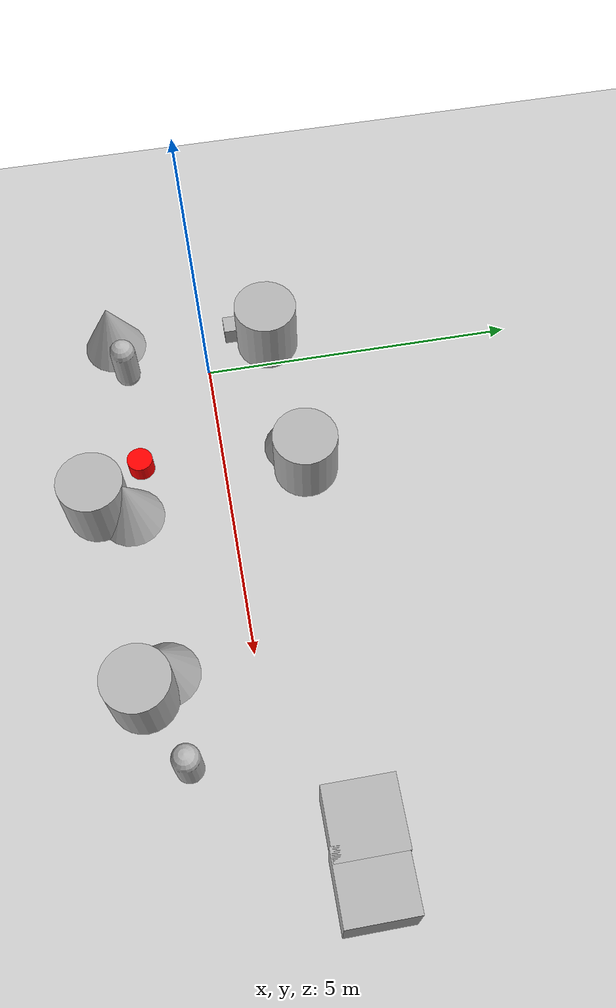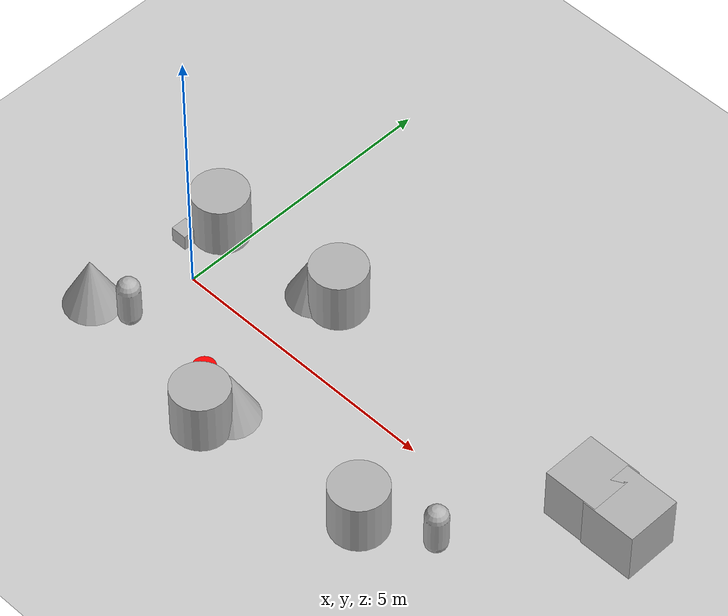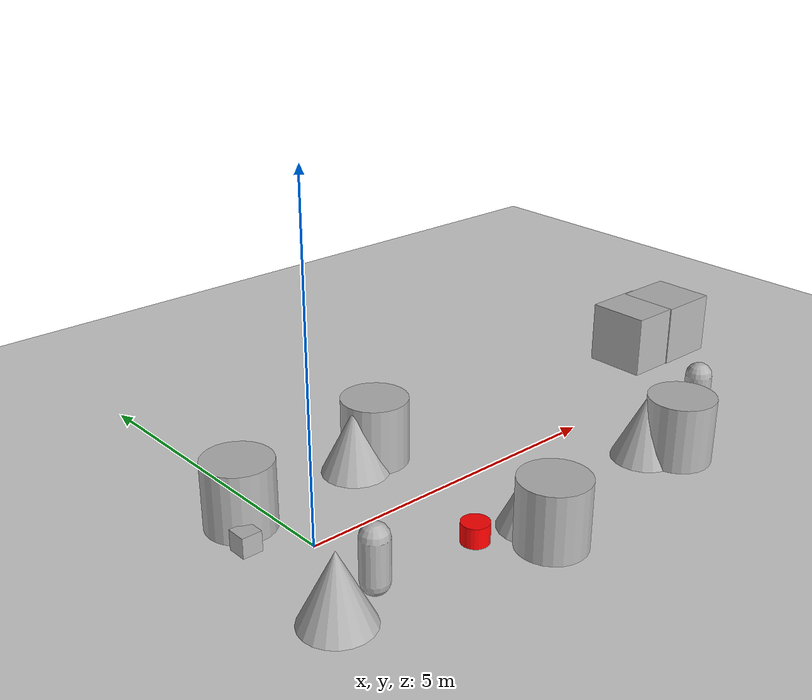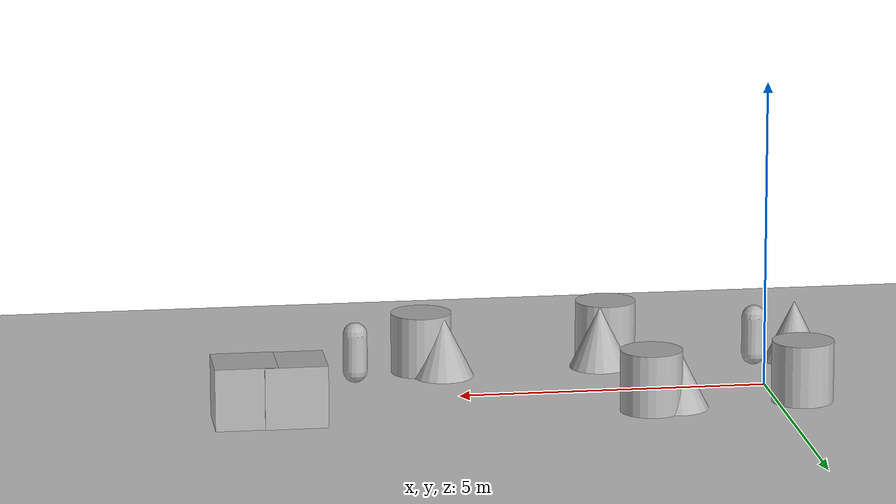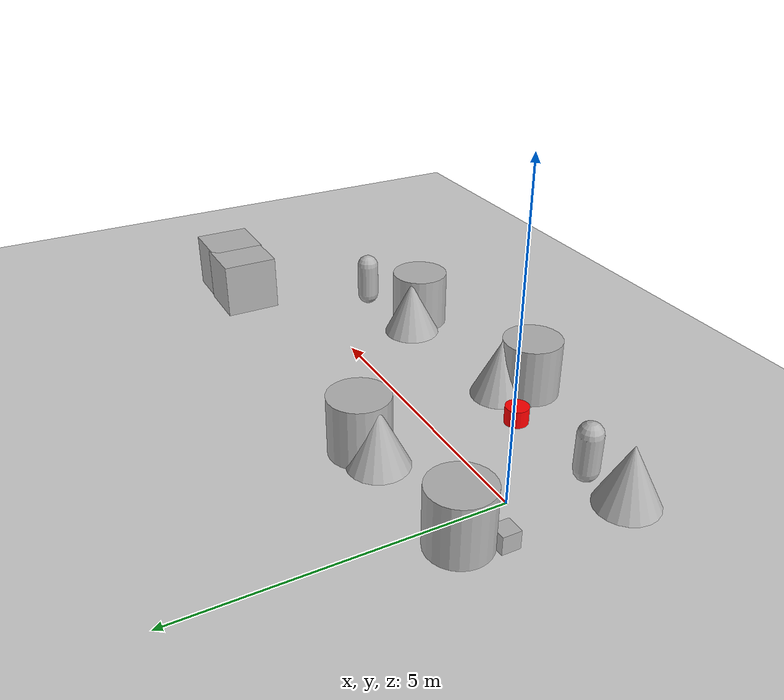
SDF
<sdf version='1.10'>
  <world name='empty'>
    <physics name='1ms' type='ignored'>
      <max_step_size>0.001</max_step_size>
      <real_time_factor>1</real_time_factor>
      <real_time_update_rate>1000</real_time_update_rate>
    </physics>
    <plugin name='gz::sim::systems::Physics' filename='gz-sim-physics-system'/>
    <plugin name='gz::sim::systems::UserCommands' filename='gz-sim-user-commands-system'/>
    <plugin name='gz::sim::systems::SceneBroadcaster' filename='gz-sim-scene-broadcaster-system'/>
    <plugin name='gz::sim::systems::Contact' filename='gz-sim-contact-system'/>
    <gravity>0 0 -9.8000000000000007</gravity>
    <magnetic_field>5.5644999999999998e-06 2.2875799999999999e-05 -4.2388400000000002e-05</magnetic_field>
    <atmosphere type='adiabatic'/>
    <scene>
      <ambient>0.400000006 0.400000006 0.400000006 1</ambient>
      <background>0.699999988 0.699999988 0.699999988 1</background>
      <shadows>true</shadows>
    </scene>
    <model name='ground_plane'>
      <static>true</static>
      <link name='link'>
        <collision name='collision'>
          <geometry>
            <plane>
              <normal>0 0 1</normal>
              <size>100 100</size>
            </plane>
          </geometry>
          <surface>
            <friction>
              <ode/>
            </friction>
            <bounce/>
            <contact/>
          </surface>
        </collision>
        <visual name='visual'>
          <geometry>
            <plane>
              <normal>0 0 1</normal>
              <size>100 100</size>
            </plane>
          </geometry>
          <material>
            <ambient>0.800000012 0.800000012 0.800000012 1</ambient>
            <diffuse>0.800000012 0.800000012 0.800000012 1</diffuse>
            <specular>0.800000012 0.800000012 0.800000012 1</specular>
          </material>
        </visual>
        <pose>0 0 0 0 0 0</pose>
        <inertial>
          <pose>0 0 0 0 0 0</pose>
          <mass>1</mass>
          <inertia>
            <ixx>1</ixx>
            <ixy>0</ixy>
            <ixz>0</ixz>
            <iyy>1</iyy>
            <iyz>0</iyz>
            <izz>1</izz>
          </inertia>
        </inertial>
        <enable_wind>false</enable_wind>
      </link>
      <pose>0 0 0 0 0 0</pose>
      <self_collide>false</self_collide>
    </model>
    <model name='cylinder'>
      <pose>1.6301748752593994 -1.2849099636077881 0.15000000596046448 0 0 0</pose>
      <link name='cylinder_link'>
        <inertial>
          <inertia>
            <ixx>0.14499999999999999</ixx>
            <ixy>0</ixy>
            <ixz>0</ixz>
            <iyy>0.14499999999999999</iyy>
            <iyz>0</iyz>
            <izz>0.125</izz>
          </inertia>
          <mass>1</mass>
          <pose>0 0 0 0 0 0</pose>
        </inertial>
        <collision name='cylinder_collision'>
          <geometry>
            <cylinder>
              <radius>0.20000000000000001</radius>
              <length>0.29999999999999999</length>
            </cylinder>
          </geometry>
          <surface>
            <friction>
              <ode/>
            </friction>
            <bounce/>
            <contact/>
          </surface>
        </collision>
        <visual name='cylinder_visual'>
          <geometry>
            <cylinder>
              <radius>0.20000000000000001</radius>
              <length>0.29999999999999999</length>
            </cylinder>
          </geometry>
          <material>
            <ambient>0.300000012 0.300000012 0.300000012 1</ambient>
            <diffuse>1 0 0 1</diffuse>
            <specular>0.5 0.5 0.5 1</specular>
            <emissive>0 0 0 1</emissive>
          </material>
        </visual>
        <pose>0 0 0 0 0 0</pose>
        <enable_wind>false</enable_wind>
      </link>
      <static>false</static>
      <self_collide>false</self_collide>
    </model>
    <model name='box'>
      <pose>-0.69999999999999996 0.5 0.14999999999999999 0 0 0</pose>
      <link name='box_link'>
        <inertial>
          <inertia>
            <ixx>0.16666</ixx>
            <ixy>0</ixy>
            <ixz>0</ixz>
            <iyy>0.16666</iyy>
            <iyz>0</iyz>
            <izz>0.16666</izz>
          </inertia>
          <mass>1</mass>
          <pose>0 0 0 0 0 0</pose>
        </inertial>
        <collision name='box_collision'>
          <geometry>
            <box>
              <size>0.29999999999999999 0.29999999999999999 0.29999999999999999</size>
            </box>
          </geometry>
          <surface>
            <friction>
              <ode/>
            </friction>
            <bounce/>
            <contact/>
          </surface>
        </collision>
        <visual name='box_visual'>
          <geometry>
            <box>
              <size>0.29999999999999999 0.29999999999999999 0.29999999999999999</size>
            </box>
          </geometry>
          <material>
            <ambient>0.300000012 0.300000012 0.300000012 1</ambient>
            <diffuse>0.699999988 0.699999988 0.699999988 1</diffuse>
            <specular>1 1 1 1</specular>

          </material>
        </visual>
        <pose>0 0 0 0 0 0</pose>
        <enable_wind>false</enable_wind>
      </link>
      <static>false</static>
      <self_collide>false</self_collide>
    </model>
    <model name='cone'>
      <pose>2.4663753639181971 -1.5219601252713684 0.5 0 0 0</pose>
      <link name='cone_link'>
        <inertial>
          <inertia>
            <ixx>0.074999999999999997</ixx>
            <ixy>0</ixy>
            <ixz>0</ixz>
            <iyy>0.074999999999999997</iyy>
            <iyz>0</iyz>
            <izz>0.074999999999999997</izz>
          </inertia>
          <mass>1</mass>
          <pose>0 0 0 0 0 0</pose>
        </inertial>
        <collision name='cone_collision'>
          <geometry>
            <cone>
              <radius>0.5</radius>
              <length>1</length>
            </cone>
          </geometry>
          <surface>
            <friction>
              <ode/>
            </friction>
            <bounce/>
            <contact/>
          </surface>
        </collision>
        <visual name='cone_visual'>
          <geometry>
            <cone>
              <radius>0.5</radius>
              <length>1</length>
            </cone>
          </geometry>
          <material>
            <ambient>0.300000012 0.300000012 0.300000012 1</ambient>
            <diffuse>0.699999988 0.699999988 0.699999988 1</diffuse>
            <specular>1 1 1 1</specular>
          </material>
        </visual>
        <pose>0 0 0 0 0 0</pose>
        <enable_wind>false</enable_wind>
      </link>
      <static>false</static>
      <self_collide>false</self_collide>
    </model>
    <model name='capsule'>
      <pose>-0.072748899945221712 -1.3118623397277054 0.5 0 0 0</pose>
      <link name='capsule_link'>
        <inertial>
          <inertia>
            <ixx>0.074153999999999998</ixx>
            <ixy>0</ixy>
            <ixz>0</ixz>
            <iyy>0.074153999999999998</iyy>
            <iyz>0</iyz>
            <izz>0.018769000000000001</izz>
          </inertia>
          <mass>1</mass>
          <pose>0 0 0 0 0 0</pose>
        </inertial>
        <collision name='capsule_collision'>
          <geometry>
            <capsule>
              <radius>0.20000000000000001</radius>
              <length>0.59999999999999998</length>
            </capsule>
          </geometry>
          <surface>
            <friction>
              <ode/>
            </friction>
            <bounce/>
            <contact/>
          </surface>
        </collision>
        <visual name='capsule_visual'>
          <geometry>
            <capsule>
              <radius>0.20000000000000001</radius>
              <length>0.59999999999999998</length>
            </capsule>
          </geometry>
          <material>
            <ambient>0.300000012 0.300000012 0.300000012 1</ambient>
            <diffuse>0.699999988 0.699999988 0.699999988 1</diffuse>
            <specular>1 1 1 1</specular>
          </material>
        </visual>
        <pose>0 0 0 0 0 0</pose>
        <enable_wind>false</enable_wind>
      </link>
      <static>false</static>
      <self_collide>false</self_collide>
    </model>
    <model name='cylinder_1'>
      <pose>-0.41330298781394958 1.0378412008285522 0.5 0 0 0</pose>
      <link name='cylinder_link'>
        <inertial>
          <inertia>
            <ixx>0.14580000000000001</ixx>
            <ixy>0</ixy>
            <ixz>0</ixz>
            <iyy>0.14580000000000001</iyy>
            <iyz>0</iyz>
            <izz>0.125</izz>
          </inertia>
          <mass>1</mass>
          <pose>0 0 0 0 0 0</pose>
        </inertial>
        <collision name='cylinder_collision'>
          <geometry>
            <cylinder>
              <radius>0.5</radius>
              <length>1</length>
            </cylinder>
          </geometry>
          <surface>
            <friction>
              <ode/>
            </friction>
            <bounce/>
            <contact/>
          </surface>
        </collision>
        <visual name='cylinder_visual'>
          <geometry>
            <cylinder>
              <radius>0.5</radius>
              <length>1</length>
            </cylinder>
          </geometry>
          <material>
            <ambient>0.300000012 0.300000012 0.300000012 1</ambient>
            <diffuse>0.699999988 0.699999988 0.699999988 1</diffuse>
            <specular>1 1 1 1</specular>
          </material>
        </visual>
        <pose>0 0 0 0 0 0</pose>
        <enable_wind>false</enable_wind>
      </link>
      <static>false</static>
      <self_collide>false</self_collide>
    </model>
    <model name='cylinder_2'>
      <pose>5.4198716437239751 -1.6309203208839749 0.5 0 0 0</pose>
      <link name='cylinder_link'>
        <inertial>
          <inertia>
            <ixx>0.14580000000000001</ixx>
            <ixy>0</ixy>
            <ixz>0</ixz>
            <iyy>0.14580000000000001</iyy>
            <iyz>0</iyz>
            <izz>0.125</izz>
          </inertia>
          <mass>1</mass>
          <pose>0 0 0 0 0 0</pose>
        </inertial>
        <collision name='cylinder_collision'>
          <geometry>
            <cylinder>
              <radius>0.5</radius>
              <length>1</length>
            </cylinder>
          </geometry>
          <surface>
            <friction>
              <ode/>
            </friction>
            <bounce/>
            <contact/>
          </surface>
        </collision>
        <visual name='cylinder_visual'>
          <geometry>
            <cylinder>
              <radius>0.5</radius>
              <length>1</length>
            </cylinder>
          </geometry>
          <material>
            <ambient>0.300000012 0.300000012 0.300000012 1</ambient>
            <diffuse>0.699999988 0.699999988 0.699999988 1</diffuse>
            <specular>1 1 1 1</specular>
          </material>
        </visual>
        <pose>0 0 0 0 0 0</pose>
        <enable_wind>false</enable_wind>
      </link>
      <static>false</static>
      <self_collide>false</self_collide>
    </model>
    <model name='cone_2'>
      <pose>-0.78715801239013672 -1.4781883955001831 0.5 0 0 0</pose>
      <link name='cone_link'>
        <inertial>
          <inertia>
            <ixx>0.074999999999999997</ixx>
            <ixy>0</ixy>
            <ixz>0</ixz>
            <iyy>0.074999999999999997</iyy>
            <iyz>0</iyz>
            <izz>0.074999999999999997</izz>
          </inertia>
          <mass>1</mass>
          <pose>0 0 0 0 0 0</pose>
        </inertial>
        <collision name='cone_collision'>
          <geometry>
            <cone>
              <radius>0.5</radius>
              <length>1</length>
            </cone>
          </geometry>
          <surface>
            <friction>
              <ode/>
            </friction>
            <bounce/>
            <contact/>
          </surface>
        </collision>
        <visual name='cone_visual'>
          <geometry>
            <cone>
              <radius>0.5</radius>
              <length>1</length>
            </cone>
          </geometry>
          <material>
            <ambient>0.300000012 0.300000012 0.300000012 1</ambient>
            <diffuse>0.699999988 0.699999988 0.699999988 1</diffuse>
            <specular>1 1 1 1</specular>
          </material>
        </visual>
        <pose>0 0 0 0 0 0</pose>
        <enable_wind>false</enable_wind>
      </link>
      <static>false</static>
      <self_collide>false</self_collide>
    </model>
    <model name='cylinder_3'>
      <pose>2.3009109497070312 -1.9980499744415283 0.5 0 0 0</pose>
      <link name='cylinder_link'>
        <inertial>
          <inertia>
            <ixx>0.14580000000000001</ixx>
            <ixy>0</ixy>
            <ixz>0</ixz>
            <iyy>0.14580000000000001</iyy>
            <iyz>0</iyz>
            <izz>0.125</izz>
          </inertia>
          <mass>1</mass>
          <pose>0 0 0 0 0 0</pose>
        </inertial>
        <collision name='cylinder_collision'>
          <geometry>
            <cylinder>
              <radius>0.5</radius>
              <length>1</length>
            </cylinder>
          </geometry>
          <surface>
            <friction>
              <ode/>
            </friction>
            <bounce/>
            <contact/>
          </surface>
        </collision>
        <visual name='cylinder_visual'>
          <geometry>
            <cylinder>
              <radius>0.5</radius>
              <length>1</length>
            </cylinder>
          </geometry>
          <material>
            <ambient>0.300000012 0.300000012 0.300000012 1</ambient>
            <diffuse>0.699999988 0.699999988 0.699999988 1</diffuse>
            <specular>1 1 1 1</specular>
          </material>
        </visual>
        <pose>0 0 0 0 0 0</pose>
        <enable_wind>false</enable_wind>
      </link>
      <static>false</static>
      <self_collide>false</self_collide>
    </model>
    <model name='cone_3'>
      <pose>1.644070029258728 1.1721001863479614 0.5 0 0 0</pose>
      <link name='cone_link'>
        <inertial>
          <inertia>
            <ixx>0.074999999999999997</ixx>
            <ixy>0</ixy>
            <ixz>0</ixz>
            <iyy>0.074999999999999997</iyy>
            <iyz>0</iyz>
            <izz>0.074999999999999997</izz>
          </inertia>
          <mass>1</mass>
          <pose>0 0 0 0 0 0</pose>
        </inertial>
        <collision name='cone_collision'>
          <geometry>
            <cone>
              <radius>0.5</radius>
              <length>1</length>
            </cone>
          </geometry>
          <surface>
            <friction>
              <ode/>
            </friction>
            <bounce/>
            <contact/>
          </surface>
        </collision>
        <visual name='cone_visual'>
          <geometry>
            <cone>
              <radius>0.5</radius>
              <length>1</length>
            </cone>
          </geometry>
          <material>
            <ambient>0.300000012 0.300000012 0.300000012 1</ambient>
            <diffuse>0.699999988 0.699999988 0.699999988 1</diffuse>
            <specular>1 1 1 1</specular>
          </material>
        </visual>
        <pose>0 0 0 0 0 0</pose>
        <enable_wind>false</enable_wind>
      </link>
      <static>false</static>
      <self_collide>false</self_collide>
    </model>
    <model name='cylinder_4'>
      <pose>2.0869200229644775 1.262776255607605 0.5 0 0 0</pose>
      <link name='cylinder_link'>
        <inertial>
          <inertia>
            <ixx>0.14580000000000001</ixx>
            <ixy>0</ixy>
            <ixz>0</ixz>
            <iyy>0.14580000000000001</iyy>
            <iyz>0</iyz>
            <izz>0.125</izz>
          </inertia>
          <mass>1</mass>
          <pose>0 0 0 0 0 0</pose>
        </inertial>
        <collision name='cylinder_collision'>
          <geometry>
            <cylinder>
              <radius>0.5</radius>
              <length>1</length>
            </cylinder>
          </geometry>
          <surface>
            <friction>
              <ode/>
            </friction>
            <bounce/>
            <contact/>
          </surface>
        </collision>
        <visual name='cylinder_visual'>
          <geometry>
            <cylinder>
              <radius>0.5</radius>
              <length>1</length>
            </cylinder>
          </geometry>
          <material>
            <ambient>0.300000012 0.300000012 0.300000012 1</ambient>
            <diffuse>0.699999988 0.699999988 0.699999988 1</diffuse>
            <specular>1 1 1 1</specular>
          </material>
        </visual>
        <pose>0 0 0 0 0 0</pose>
        <enable_wind>false</enable_wind>
      </link>
      <static>false</static>
      <self_collide>false</self_collide>
    </model>
    <model name='box_2'>
      <pose>7.7668743133544922 1.0590200424194336 0.5 0 0 0</pose>
      <link name='box_link'>
        <inertial>
          <inertia>
            <ixx>0.16666</ixx>
            <ixy>0</ixy>
            <ixz>0</ixz>
            <iyy>0.16666</iyy>
            <iyz>0</iyz>
            <izz>0.16666</izz>
          </inertia>
          <mass>1</mass>
          <pose>0 0 0 0 0 0</pose>
        </inertial>
        <collision name='box_collision'>
          <geometry>
            <box>
              <size>1 1 1</size>
            </box>
          </geometry>
          <surface>
            <friction>
              <ode/>
            </friction>
            <bounce/>
            <contact/>
          </surface>
        </collision>
        <visual name='box_visual'>
          <geometry>
            <box>
              <size>1 1 1</size>
            </box>
          </geometry>
          <material>
            <ambient>0.300000012 0.300000012 0.300000012 1</ambient>
            <diffuse>0.699999988 0.699999988 0.699999988 1</diffuse>
            <specular>1 1 1 1</specular>
          </material>
        </visual>
        <pose>0 0 0 0 0 0</pose>
        <enable_wind>false</enable_wind>
      </link>
      <static>false</static>
      <self_collide>false</self_collide>
    </model>
    <model name='cone_5'>
      <pose>5.0965156555175781 -1.2923200130462646 0.5 0 0 0</pose>
      <link name='cone_link'>
        <inertial>
          <inertia>
            <ixx>0.074999999999999997</ixx>
            <ixy>0</ixy>
            <ixz>0</ixz>
            <iyy>0.074999999999999997</iyy>
            <iyz>0</iyz>
            <izz>0.074999999999999997</izz>
          </inertia>
          <mass>1</mass>
          <pose>0 0 0 0 0 0</pose>
        </inertial>
        <collision name='cone_collision'>
          <geometry>
            <cone>
              <radius>0.5</radius>
              <length>1</length>
            </cone>
          </geometry>
          <surface>
            <friction>
              <ode/>
            </friction>
            <bounce/>
            <contact/>
          </surface>
        </collision>
        <visual name='cone_visual'>
          <geometry>
            <cone>
              <radius>0.5</radius>
              <length>1</length>
            </cone>
          </geometry>
          <material>
            <ambient>0.300000012 0.300000012 0.300000012 1</ambient>
            <diffuse>0.699999988 0.699999988 0.699999988 1</diffuse>
            <specular>1 1 1 1</specular>
          </material>
        </visual>
        <pose>0 0 0 0 0 0</pose>
        <enable_wind>false</enable_wind>
      </link>
      <static>false</static>
      <self_collide>false</self_collide>
    </model>
    <model name='capsule_1'>
      <pose>6.5653618435120435 -1.1060162670871609 0.5 0 0 0</pose>
      <link name='capsule_link'>
        <inertial>
          <inertia>
            <ixx>0.074153999999999998</ixx>
            <ixy>0</ixy>
            <ixz>0</ixz>
            <iyy>0.074153999999999998</iyy>
            <iyz>0</iyz>
            <izz>0.018769000000000001</izz>
          </inertia>
          <mass>1</mass>
          <pose>0 0 0 0 0 0</pose>
        </inertial>
        <collision name='capsule_collision'>
          <geometry>
            <capsule>
              <radius>0.20000000000000001</radius>
              <length>0.59999999999999998</length>
            </capsule>
          </geometry>
          <surface>
            <friction>
              <ode/>
            </friction>
            <bounce/>
            <contact/>
          </surface>
        </collision>
        <visual name='capsule_visual'>
          <geometry>
            <capsule>
              <radius>0.20000000000000001</radius>
              <length>0.59999999999999998</length>
            </capsule>
          </geometry>
          <material>
            <ambient>0.300000012 0.300000012 0.300000012 1</ambient>
            <diffuse>0.699999988 0.699999988 0.699999988 1</diffuse>
            <specular>1 1 1 1</specular>
          </material>
        </visual>
        <pose>0 0 0 0 0 0</pose>
        <enable_wind>false</enable_wind>
      </link>
      <static>false</static>
      <self_collide>false</self_collide>
    </model>
    <model name='box_3'>
      <pose>8.5496939894857231 1.0392900347025207 0.5 0 0 0</pose>
      <link name='box_link'>
        <inertial>
          <inertia>
            <ixx>0.16666</ixx>
            <ixy>0</ixy>
            <ixz>0</ixz>
            <iyy>0.16666</iyy>
            <iyz>0</iyz>
            <izz>0.16666</izz>
          </inertia>
          <mass>1</mass>
          <pose>0 0 0 0 0 0</pose>
        </inertial>
        <collision name='box_collision'>
          <geometry>
            <box>
              <size>1 1 1</size>
            </box>
          </geometry>
          <surface>
            <friction>
              <ode/>
            </friction>
            <bounce/>
            <contact/>
          </surface>
        </collision>
        <visual name='box_visual'>
          <geometry>
            <box>
              <size>1 1 1</size>
            </box>
          </geometry>
          <material>
            <ambient>0.300000012 0.300000012 0.300000012 1</ambient>
            <diffuse>0.699999988 0.699999988 0.699999988 1</diffuse>
            <specular>1 1 1 1</specular>
          </material>
        </visual>
        <pose>0 0 0 0 0 0</pose>
        <enable_wind>false</enable_wind>
      </link>
      <static>false</static>
      <self_collide>false</self_collide>
    </model>
    <light name='sun' type='directional'>
      <pose>0 0 10 0 0 0</pose>
      <cast_shadows>true</cast_shadows>
      <intensity>1</intensity>
      <direction>-0.5 0.10000000000000001 -0.90000000000000002</direction>
      <diffuse>0.800000012 0.800000012 0.800000012 1</diffuse>
      <specular>0.200000003 0.200000003 0.200000003 1</specular>
      <attenuation>
        <range>1000</range>
        <linear>0.01</linear>
        <constant>0.90000000000000002</constant>
        <quadratic>0.001</quadratic>
      </attenuation>
      <spot>
        <inner_angle>0</inner_angle>
        <outer_angle>0</outer_angle>
        <falloff>0</falloff>
      </spot>
    </light>
  </world>
</sdf>
